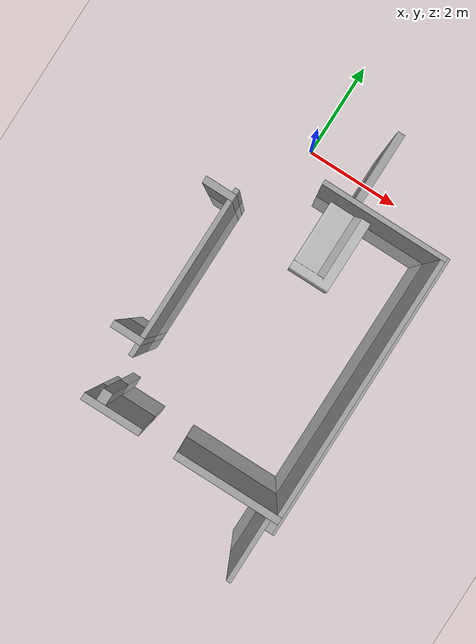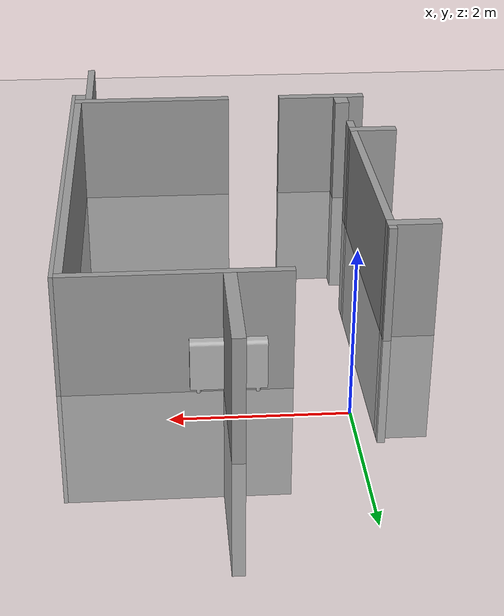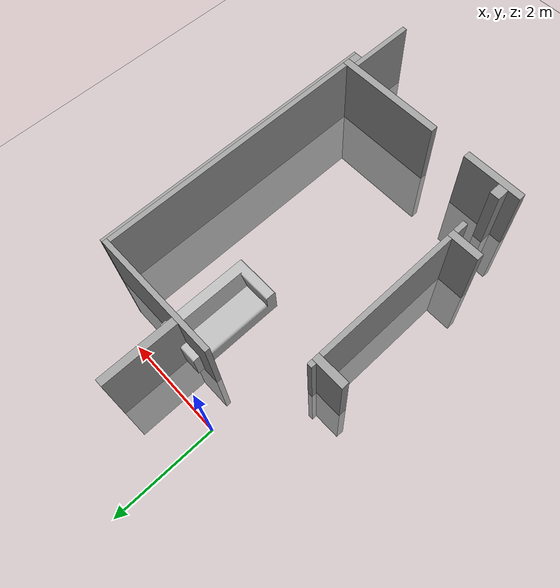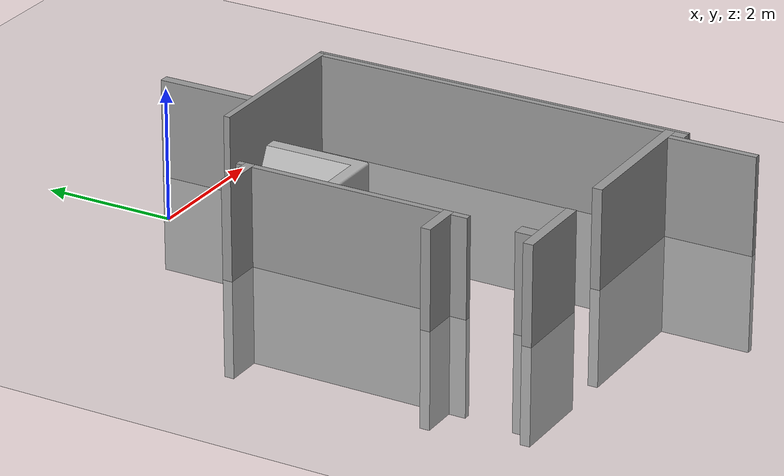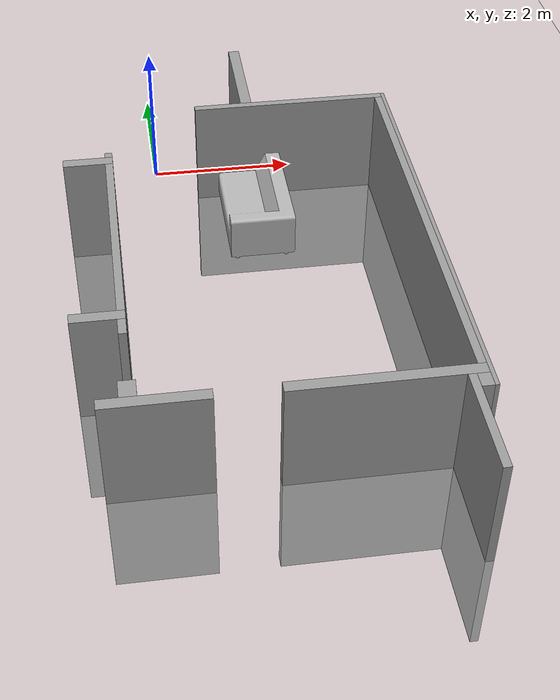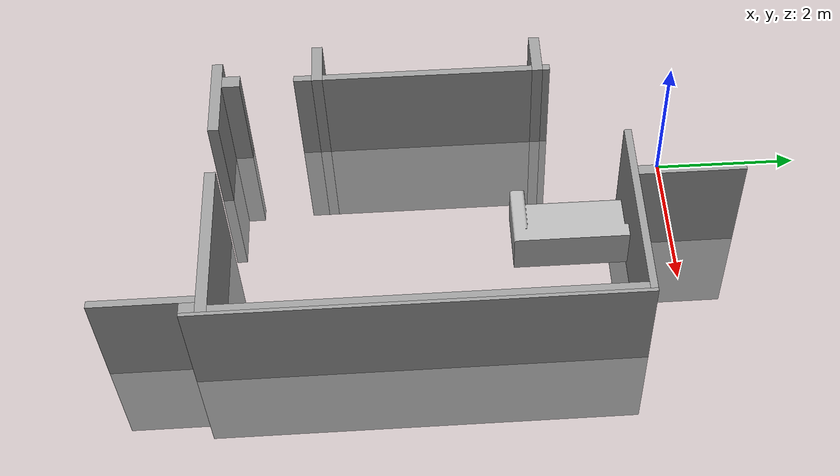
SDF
<sdf version='1.4'>
  <world name='default'>
    <!-- Default physics configuration -->
    <physics type='ode'>
      <gravity>0.000000 0.000000 -9.810000</gravity>
      <ode>
        <solver>
          <type>quick</type>
          <iters>20</iters>
          <sor>1.000000</sor>
        </solver>
        <constraints>
          <cfm>0.000000</cfm>
          <erp>0.200000</erp>
          <contact_max_correcting_vel>100.000000</contact_max_correcting_vel>
          <contact_surface_layer>0.000000</contact_surface_layer>
        </constraints>
      </ode>
      <real_time_update_rate>1000.000000</real_time_update_rate>
      <max_step_size>0.001000</max_step_size>
      <real_time_factor>1.000000</real_time_factor>
      <max_contacts>20</max_contacts>
    </physics>

    <!-- A global light source -->
    <include>
      <uri>model://sun</uri>
    </include>

    <!-- A ground plane -->
    <include>
      <uri>model://ground_plane</uri>
    </include>

    <!-- Walls -->
    <include>
      <uri>model://robocup2014</uri>
      <name>robocup_walls</name>
      <pose>-1.28 -7.68 0 0 0 1.5708</pose>
    </include>

    <!-- Sofa -->
    <include>
      <uri>model://sofa</uri>
      <name>sofa</name>
      <pose>1.260476 -1.365666 0 0 0 0</pose>
    </include>

    <!-- Camera Position -->
    <gui fullscreen='0'>
      <camera name='user_camera'>
        <pose>5.694260 7.254210 18.725000 0.000000 1.145800 -3.134990</pose>
        <view_controller>orbit</view_controller>
      </camera>
    </gui>
  </world>
</sdf>

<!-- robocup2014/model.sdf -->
<sdf version="1.4">
  <model name="Robocup2014">
    <static>1</static>
    <link name="Wall_0">
      <collision name="Wall_0_Collision">
        <geometry>
          <box>
            <size>0.15000 0.65000 3.00000</size>
          </box>
        </geometry>
        <pose>2.82500 -0.32500 0 0 0 0.00000</pose>
      </collision>
      <visual name="Wall_0_Visual">
        <geometry>
          <box>
            <size>0.15000 0.65000 3.00000</size>
          </box>
        </geometry>
        <material>
          <script>
            <uri>file://media/materials/scripts/gazebo.material</uri>
            <name>Gazebo/Grey</name>
          </script>
        </material>
        <pose>2.82500 -0.32500 0 0 0 0.00000</pose>
      </visual>
    </link>
    <link name="Wall_1">
      <collision name="Wall_1_Collision">
        <geometry>
          <box>
            <size>0.15000 0.65000 3.00000</size>
          </box>
        </geometry>
        <pose>5.92500 -0.32500 0 0 0 0.00000</pose>
      </collision>
      <visual name="Wall_1_Visual">
        <geometry>
          <box>
            <size>0.15000 0.65000 3.00000</size>
          </box>
        </geometry>
        <material>
          <script>
            <uri>file://media/materials/scripts/gazebo.material</uri>
            <name>Gazebo/Grey</name>
          </script>
        </material>
        <pose>5.92500 -0.32500 0 0 0 0.00000</pose>
      </visual>
    </link>
    <link name="Wall_2">
      <collision name="Wall_2_Collision">
        <geometry>
          <box>
            <size>0.15000 1.25000 3.00000</size>
          </box>
        </geometry>
        <pose>1.42500 -0.87500 0 0 0 0.00000</pose>
      </collision>
      <visual name="Wall_2_Visual">
        <geometry>
          <box>
            <size>0.15000 1.25000 3.00000</size>
          </box>
        </geometry>
        <material>
          <script>
            <uri>file://media/materials/scripts/gazebo.material</uri>
            <name>Gazebo/Grey</name>
          </script>
        </material>
        <pose>1.42500 -0.87500 0 0 0 0.00000</pose>
      </visual>
    </link>
    <link name="Wall_3">
      <collision name="Wall_3_Collision">
        <geometry>
          <box>
            <size>0.25000 0.20000 3.00000</size>
          </box>
        </geometry>
        <pose>1.62500 -0.60000 0 0 0 0.00000</pose>
      </collision>
      <visual name="Wall_3_Visual">
        <geometry>
          <box>
            <size>0.25000 0.20000 3.00000</size>
          </box>
        </geometry>
        <material>
          <script>
            <uri>file://media/materials/scripts/gazebo.material</uri>
            <name>Gazebo/Grey</name>
          </script>
        </material>
        <pose>1.62500 -0.60000 0 0 0 0.00000</pose>
      </visual>
    </link>
    <link name="Wall_4">
      <collision name="Wall_4_Collision">
        <geometry>
          <box>
            <size>0.25000 0.10000 3.00000</size>
          </box>
        </geometry>
        <pose>2.62500 -0.60000 0 0 0 0.00000</pose>
      </collision>
      <visual name="Wall_4_Visual">
        <geometry>
          <box>
            <size>0.25000 0.10000 3.00000</size>
          </box>
        </geometry>
        <material>
          <script>
            <uri>file://media/materials/scripts/gazebo.material</uri>
            <name>Gazebo/Grey</name>
          </script>
        </material>
        <pose>2.62500 -0.60000 0 0 0 0.00000</pose>
      </visual>
    </link>
    <link name="Wall_5">
      <collision name="Wall_5_Collision">
        <geometry>
          <box>
            <size>2.95000 0.10000 3.00000</size>
          </box>
        </geometry>
        <pose>4.37500 -0.60000 0 0 0 0.00000</pose>
      </collision>
      <visual name="Wall_5_Visual">
        <geometry>
          <box>
            <size>2.95000 0.10000 3.00000</size>
          </box>
        </geometry>
        <material>
          <script>
            <uri>file://media/materials/scripts/gazebo.material</uri>
            <name>Gazebo/Grey</name>
          </script>
        </material>
        <pose>4.37500 -0.60000 0 0 0 0.00000</pose>
      </visual>
    </link>
    <link name="Wall_6">
      <collision name="Wall_6_Collision">
        <geometry>
          <box>
            <size>0.10000 0.10000 3.00000</size>
          </box>
        </geometry>
        <pose>6.05000 -0.60000 0 0 0 0.00000</pose>
      </collision>
      <visual name="Wall_6_Visual">
        <geometry>
          <box>
            <size>0.10000 0.10000 3.00000</size>
          </box>
        </geometry>
        <material>
          <script>
            <uri>file://media/materials/scripts/gazebo.material</uri>
            <name>Gazebo/Grey</name>
          </script>
        </material>
        <pose>6.05000 -0.60000 0 0 0 0.00000</pose>
      </visual>
    </link>
    <link name="Wall_7">
      <collision name="Wall_7_Collision">
        <geometry>
          <box>
            <size>0.10000 2.65000 3.00000</size>
          </box>
        </geometry>
        <pose>7.05000 -3.17500 0 0 0 0.00000</pose>
      </collision>
      <visual name="Wall_7_Visual">
        <geometry>
          <box>
            <size>0.10000 2.65000 3.00000</size>
          </box>
        </geometry>
        <material>
          <script>
            <uri>file://media/materials/scripts/gazebo.material</uri>
            <name>Gazebo/Grey</name>
          </script>
        </material>
        <pose>7.05000 -3.17500 0 0 0 0.00000</pose>
      </visual>
    </link>
    <link name="Wall_8">
      <collision name="Wall_8_Collision">
        <geometry>
          <box>
            <size>0.15000 2.25000 3.00000</size>
          </box>
        </geometry>
        <pose>1.42500 -3.37500 0 0 0 0.00000</pose>
      </collision>
      <visual name="Wall_8_Visual">
        <geometry>
          <box>
            <size>0.15000 2.25000 3.00000</size>
          </box>
        </geometry>
        <material>
          <script>
            <uri>file://media/materials/scripts/gazebo.material</uri>
            <name>Gazebo/Grey</name>
          </script>
        </material>
        <pose>1.42500 -3.37500 0 0 0 0.00000</pose>
      </visual>
    </link>
    <link name="Wall_9">
      <collision name="Wall_9_Collision">
        <geometry>
          <box>
            <size>1.45000 0.15000 3.00000</size>
          </box>
        </geometry>
        <pose>7.82500 -2.57500 0 0 0 0.00000</pose>
      </collision>
      <visual name="Wall_9_Visual">
        <geometry>
          <box>
            <size>1.45000 0.15000 3.00000</size>
          </box>
        </geometry>
        <material>
          <script>
            <uri>file://media/materials/scripts/gazebo.material</uri>
            <name>Gazebo/Grey</name>
          </script>
        </material>
        <pose>7.82500 -2.57500 0 0 0 0.00000</pose>
      </visual>
    </link>
    <link name="Wall_10">
      <collision name="Wall_10_Collision">
        <geometry>
          <box>
            <size>1.35000 0.10000 3.00000</size>
          </box>
        </geometry>
        <pose>0.67500 -4.30000 0 0 0 0.00000</pose>
      </collision>
      <visual name="Wall_10_Visual">
        <geometry>
          <box>
            <size>1.35000 0.10000 3.00000</size>
          </box>
        </geometry>
        <material>
          <script>
            <uri>file://media/materials/scripts/gazebo.material</uri>
            <name>Gazebo/Grey</name>
          </script>
        </material>
        <pose>0.67500 -4.30000 0 0 0 0.00000</pose>
      </visual>
    </link>
    <link name="Wall_11">
      <collision name="Wall_11_Collision">
        <geometry>
          <box>
            <size>0.20000 0.15000 3.00000</size>
          </box>
        </geometry>
        <pose>1.25000 -4.42500 0 0 0 0.00000</pose>
      </collision>
      <visual name="Wall_11_Visual">
        <geometry>
          <box>
            <size>0.20000 0.15000 3.00000</size>
          </box>
        </geometry>
        <material>
          <script>
            <uri>file://media/materials/scripts/gazebo.material</uri>
            <name>Gazebo/Grey</name>
          </script>
        </material>
        <pose>1.25000 -4.42500 0 0 0 0.00000</pose>
      </visual>
    </link>
    <link name="Wall_12">
      <collision name="Wall_12_Collision">
        <geometry>
          <box>
            <size>5.50000 0.10000 3.00000</size>
          </box>
        </geometry>
        <pose>4.25000 -4.45000 0 0 0 0.00000</pose>
      </collision>
      <visual name="Wall_12_Visual">
        <geometry>
          <box>
            <size>5.50000 0.10000 3.00000</size>
          </box>
        </geometry>
        <material>
          <script>
            <uri>file://media/materials/scripts/gazebo.material</uri>
            <name>Gazebo/Grey</name>
          </script>
        </material>
        <pose>4.25000 -4.45000 0 0 0 0.00000</pose>
      </visual>
    </link>
    <link name="Wall_13">
      <collision name="Wall_13_Collision">
        <geometry>
          <box>
            <size>5.95000 0.05000 3.00000</size>
          </box>
        </geometry>
        <pose>4.12500 -4.52500 0 0 0 0.00000</pose>
      </collision>
      <visual name="Wall_13_Visual">
        <geometry>
          <box>
            <size>5.95000 0.05000 3.00000</size>
          </box>
        </geometry>
        <material>
          <script>
            <uri>file://media/materials/scripts/gazebo.material</uri>
            <name>Gazebo/Grey</name>
          </script>
        </material>
        <pose>4.12500 -4.52500 0 0 0 0.00000</pose>
      </visual>
    </link>
  </model>
</sdf>

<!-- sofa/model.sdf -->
<sdf version='1.6'>
  <model name='sofa'>
    <link name='link_0'>
      <pose frame=''>0 0 0 0 -0 0</pose>
      <inertial>
        <mass>20</mass>
        <pose frame=''>0.05 0.02 0.35 0 0 0</pose>
        <inertia>
          <ixx>6.5189973924</ixx>
          <ixy>0</ixy>
          <ixz>0</ixz>
          <iyy>2.3789990484</iyy>
          <iyz>0</iyz>
          <izz>7.0229971908</izz>
        </inertia>
      </inertial>
      <visual name='visual'>
        <pose frame=''>0 0 0 0 -0 0</pose>
        <geometry>
          <mesh>
            <uri>file://isr-testbed/sofa/sofa.dae</uri>
            <scale>1 1 1</scale>
          </mesh>
        </geometry>
        <material>
          <lighting>1</lighting>
          <script>
            <uri>file://media/materials/scripts/gazebo.material</uri>
            <name>Gazebo/DepthMapVS</name>
          </script>
          <ambient>0.3 0.3 0.3 1</ambient>
          <diffuse>0.7 0.7 0.7 1</diffuse>
          <specular>0.01 0.01 0.01 1</specular>
          <emissive>0 0 0 1</emissive>
        </material>
        <cast_shadows>1</cast_shadows>
        <transparency>0</transparency>
      </visual>
      <collision name='collision'>
        <laser_retro>0</laser_retro>
        <max_contacts>10</max_contacts>
        <pose frame=''>0.05 0 0.2 0 0 0</pose>
        <geometry>
          <box>
            <size>0.93 1.83 0.37</size>
          </box>
        </geometry>
        <surface>
          <friction>
            <ode>
              <mu>1</mu>
              <mu2>1</mu2>
              <fdir1>0 0 0</fdir1>
              <slip1>0</slip1>
              <slip2>0</slip2>
            </ode>
            <torsional>
              <coefficient>1</coefficient>
              <patch_radius>0</patch_radius>
              <surface_radius>0</surface_radius>
              <use_patch_radius>1</use_patch_radius>
              <ode>
                <slip>0</slip>
              </ode>
            </torsional>
          </friction>
          <bounce>
            <restitution_coefficient>0</restitution_coefficient>
            <threshold>1e+06</threshold>
          </bounce>
          <contact>
            <collide_without_contact>0</collide_without_contact>
            <collide_without_contact_bitmask>1</collide_without_contact_bitmask>
            <collide_bitmask>1</collide_bitmask>
            <ode>
              <soft_cfm>0</soft_cfm>
              <soft_erp>0.2</soft_erp>
              <kp>1e+13</kp>
              <kd>1</kd>
              <max_vel>0.01</max_vel>
              <min_depth>0</min_depth>
            </ode>
            <bullet>
              <split_impulse>1</split_impulse>
              <split_impulse_penetration_threshold>-0.01</split_impulse_penetration_threshold>
              <soft_cfm>0</soft_cfm>
              <soft_erp>0.2</soft_erp>
              <kp>1e+13</kp>
              <kd>1</kd>
            </bullet>
          </contact>
        </surface>
      </collision>
      <collision name='collision_back'>
        <laser_retro>0</laser_retro>
        <max_contacts>10</max_contacts>
        <pose frame=''>0.35 0 0.5 0 0 0</pose>
        <geometry>
          <box>
            <size>0.3 1.83 0.5</size>
          </box>
        </geometry>
        <surface>
          <friction>
            <ode>
              <mu>1</mu>
              <mu2>1</mu2>
              <fdir1>0 0 0</fdir1>
              <slip1>0</slip1>
              <slip2>0</slip2>
            </ode>
            <torsional>
              <coefficient>1</coefficient>
              <patch_radius>0</patch_radius>
              <surface_radius>0</surface_radius>
              <use_patch_radius>1</use_patch_radius>
              <ode>
                <slip>0</slip>
              </ode>
            </torsional>
          </friction>
          <bounce>
            <restitution_coefficient>0</restitution_coefficient>
            <threshold>1e+06</threshold>
          </bounce>
          <contact>
            <collide_without_contact>0</collide_without_contact>
            <collide_without_contact_bitmask>1</collide_without_contact_bitmask>
            <collide_bitmask>1</collide_bitmask>
            <ode>
              <soft_cfm>0</soft_cfm>
              <soft_erp>0.2</soft_erp>
              <kp>1e+13</kp>
              <kd>1</kd>
              <max_vel>0.01</max_vel>
              <min_depth>0</min_depth>
            </ode>
            <bullet>
              <split_impulse>1</split_impulse>
              <split_impulse_penetration_threshold>-0.01</split_impulse_penetration_threshold>
              <soft_cfm>0</soft_cfm>
              <soft_erp>0.2</soft_erp>
              <kp>1e+13</kp>
              <kd>1</kd>
            </bullet>
          </contact>
        </surface>
      </collision>
      <collision name='collision_arm_left'>
        <laser_retro>0</laser_retro>
        <max_contacts>10</max_contacts>
        <pose frame=''>0 -0.8 0.5 0 0 0</pose>
        <geometry>
          <box>
            <size>0.8 0.25 0.5</size>
          </box>
        </geometry>
        <surface>
          <friction>
            <ode>
              <mu>1</mu>
              <mu2>1</mu2>
              <fdir1>0 0 0</fdir1>
              <slip1>0</slip1>
              <slip2>0</slip2>
            </ode>
            <torsional>
              <coefficient>1</coefficient>
              <patch_radius>0</patch_radius>
              <surface_radius>0</surface_radius>
              <use_patch_radius>1</use_patch_radius>
              <ode>
                <slip>0</slip>
              </ode>
            </torsional>
          </friction>
          <bounce>
            <restitution_coefficient>0</restitution_coefficient>
            <threshold>1e+06</threshold>
          </bounce>
          <contact>
            <collide_without_contact>0</collide_without_contact>
            <collide_without_contact_bitmask>1</collide_without_contact_bitmask>
            <collide_bitmask>1</collide_bitmask>
            <ode>
              <soft_cfm>0</soft_cfm>
              <soft_erp>0.2</soft_erp>
              <kp>1e+13</kp>
              <kd>1</kd>
              <max_vel>0.01</max_vel>
              <min_depth>0</min_depth>
            </ode>
            <bullet>
              <split_impulse>1</split_impulse>
              <split_impulse_penetration_threshold>-0.01</split_impulse_penetration_threshold>
              <soft_cfm>0</soft_cfm>
              <soft_erp>0.2</soft_erp>
              <kp>1e+13</kp>
              <kd>1</kd>
            </bullet>
          </contact>
        </surface>
      </collision>
      <collision name='collision_arm_right'>
        <laser_retro>0</laser_retro>
        <max_contacts>10</max_contacts>
        <pose frame=''>0 0.8 0.5 0 0 0</pose>
        <geometry>
          <box>
            <size>0.8 0.25 0.5</size>
          </box>
        </geometry>
        <surface>
          <friction>
            <ode>
              <mu>1</mu>
              <mu2>1</mu2>
              <fdir1>0 0 0</fdir1>
              <slip1>0</slip1>
              <slip2>0</slip2>
            </ode>
            <torsional>
              <coefficient>1</coefficient>
              <patch_radius>0</patch_radius>
              <surface_radius>0</surface_radius>
              <use_patch_radius>1</use_patch_radius>
              <ode>
                <slip>0</slip>
              </ode>
            </torsional>
          </friction>
          <bounce>
            <restitution_coefficient>0</restitution_coefficient>
            <threshold>1e+06</threshold>
          </bounce>
          <contact>
            <collide_without_contact>0</collide_without_contact>
            <collide_without_contact_bitmask>1</collide_without_contact_bitmask>
            <collide_bitmask>1</collide_bitmask>
            <ode>
              <soft_cfm>0</soft_cfm>
              <soft_erp>0.2</soft_erp>
              <kp>1e+13</kp>
              <kd>1</kd>
              <max_vel>0.01</max_vel>
              <min_depth>0</min_depth>
            </ode>
            <bullet>
              <split_impulse>1</split_impulse>
              <split_impulse_penetration_threshold>-0.01</split_impulse_penetration_threshold>
              <soft_cfm>0</soft_cfm>
              <soft_erp>0.2</soft_erp>
              <kp>1e+13</kp>
              <kd>1</kd>
            </bullet>
          </contact>
        </surface>
      </collision>
    </link>
    <static>0</static>
    <allow_auto_disable>1</allow_auto_disable>
  </model>
</sdf>
